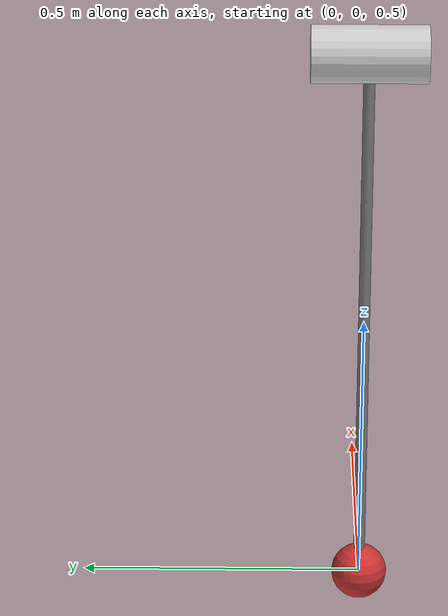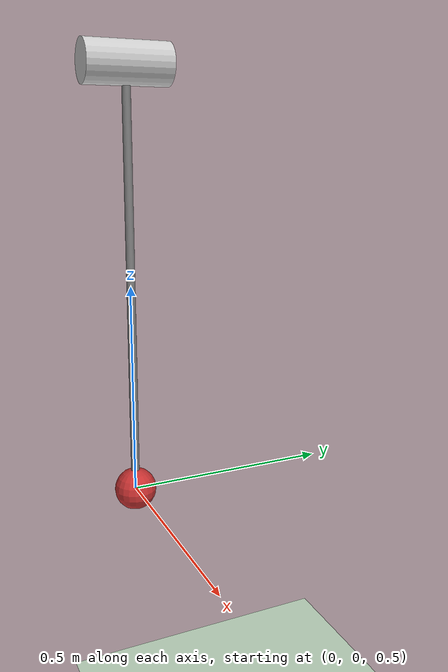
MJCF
<mujoco model="mathematical_pendulum_controlled">
    <option timestep="0.005" integrator="RK4" gravity="0 0 -9.81"/>

    <worldbody>
        <light pos="0 -2 3" dir="0 1 -1" directional="true" castshadow="true"/>
        <geom name="floor" type="plane" size="2 2 0.1" rgba="0.8 0.9 0.8 1" contype="1" conaffinity="1"/>

        <camera name="cam_side" pos="0 -2.5 1.5" quat="0.7071 0.7071 0 0"/>

        <body name="pivot" pos="0 0 1.5">
            <geom type="cylinder" size="0.05 0.1" rgba="0.8 0.8 0.8 1" quat="0.7071 0.7071 0 0"/>

            <body name="pendulum_link" pos="0 0 0">
                <joint name="hinge_y" type="hinge" axis="0 1 0" pos="0 0 0" damping="0.01"/>

                <inertial pos="0 0 -1" mass="1" diaginertia="1e-6 1e-6 1e-6"/>

                <geom type="cylinder" fromto="0 0 0  0 0 -1" size="0.01" rgba="0.5 0.5 0.5 1" contype="0" conaffinity="0"/>
                <geom type="sphere" pos="0 0 -1" size="0.05" rgba="0.8 0.2 0.2 1"/>
            </body>
        </body>
    </worldbody>

    <actuator>
        <motor name="torque_motor" joint="hinge_y" gear="1" ctrllimited="true" ctrlrange="-3.0 3.0"/>
    </actuator>

    <sensor>
        <jointpos joint="hinge_y" name="sens_theta"/>
        <jointvel joint="hinge_y" name="sens_theta_dot"/>
    </sensor>
</mujoco>
